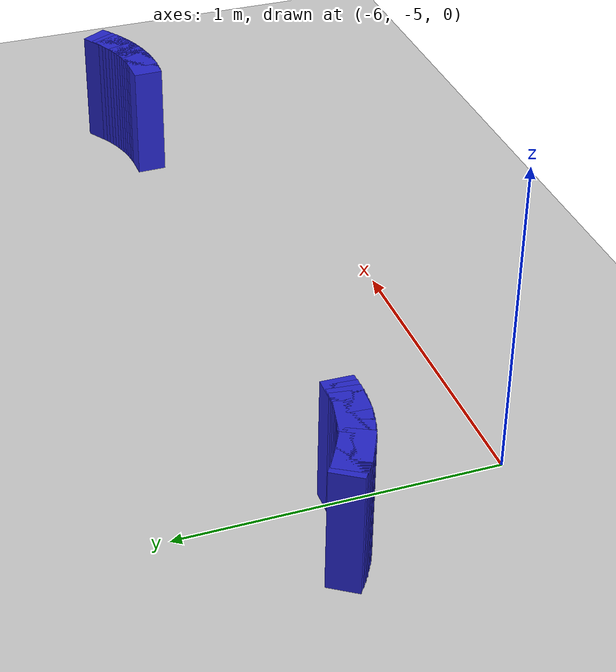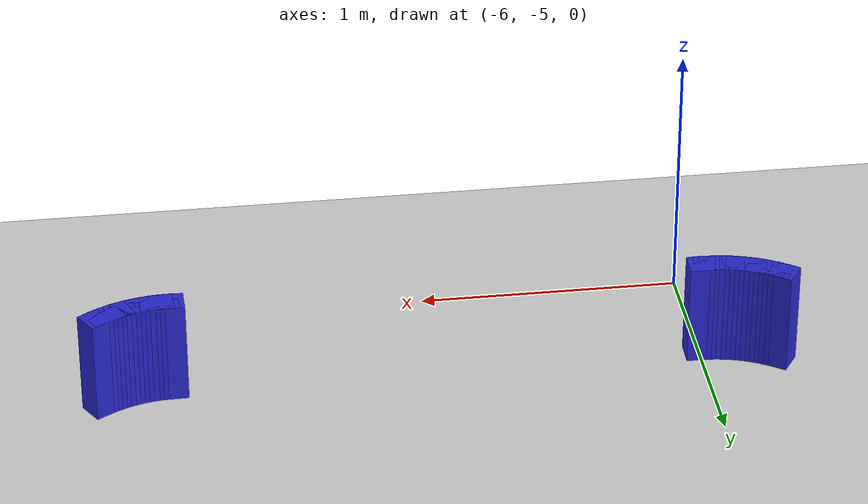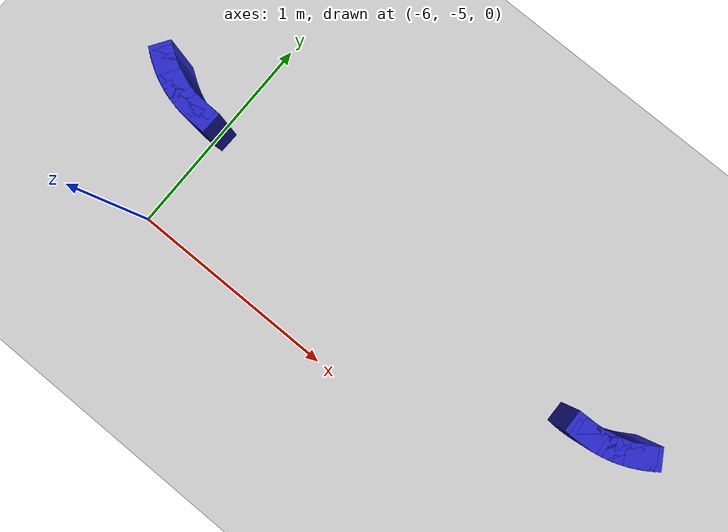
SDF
<sdf version="1.6">
 <world name="new_race_track">
  <include><uri>model://ground_plane</uri></include>
  <include><uri>model://sun</uri></include>
  <model name="race_track">
   <static>true</static>
   <link name="wall_link_25">
    <collision name="c"><geometry><box><size>0.1305 0.1 0.4</size></box></geometry></collision>
    <visual name="v">
     <geometry><box><size>0.1305 0.1 0.4</size></box></geometry>
     <material><ambient>0.15 0.15 0.8 1</ambient><diffuse>0.15 0.15 0.8 1</diffuse></material>
    </visual>
    <pose>-6.2755 -4.4168 0.200 0 0 -0.5840</pose>
   </link>
   <link name="wall_link_26">
    <collision name="c"><geometry><box><size>0.1305 0.1 0.4</size></box></geometry></collision>
    <visual name="v">
     <geometry><box><size>0.1305 0.1 0.4</size></box></geometry>
     <material><ambient>0.15 0.15 0.8 1</ambient><diffuse>0.15 0.15 0.8 1</diffuse></material>
    </visual>
    <pose>-6.2585 -4.4275 0.200 0 0 -0.5437</pose>
   </link>
   <link name="wall_link_27">
    <collision name="c"><geometry><box><size>0.1305 0.1 0.4</size></box></geometry></collision>
    <visual name="v">
     <geometry><box><size>0.1305 0.1 0.4</size></box></geometry>
     <material><ambient>0.15 0.15 0.8 1</ambient><diffuse>0.15 0.15 0.8 1</diffuse></material>
    </visual>
    <pose>-6.2410 -4.4376 0.200 0 0 -0.5035</pose>
   </link>
   <link name="wall_link_28">
    <collision name="c"><geometry><box><size>0.1305 0.1 0.4</size></box></geometry></collision>
    <visual name="v">
     <geometry><box><size>0.1305 0.1 0.4</size></box></geometry>
     <material><ambient>0.15 0.15 0.8 1</ambient><diffuse>0.15 0.15 0.8 1</diffuse></material>
    </visual>
    <pose>-6.2232 -4.4470 0.200 0 0 -0.4632</pose>
   </link>
   <link name="wall_link_29">
    <collision name="c"><geometry><box><size>0.1305 0.1 0.4</size></box></geometry></collision>
    <visual name="v">
     <geometry><box><size>0.1305 0.1 0.4</size></box></geometry>
     <material><ambient>0.15 0.15 0.8 1</ambient><diffuse>0.15 0.15 0.8 1</diffuse></material>
    </visual>
    <pose>-6.2050 -4.4556 0.200 0 0 -0.4229</pose>
   </link>
   <link name="wall_link_30">
    <collision name="c"><geometry><box><size>0.1305 0.1 0.4</size></box></geometry></collision>
    <visual name="v">
     <geometry><box><size>0.1305 0.1 0.4</size></box></geometry>
     <material><ambient>0.15 0.15 0.8 1</ambient><diffuse>0.15 0.15 0.8 1</diffuse></material>
    </visual>
    <pose>-6.1865 -4.4635 0.200 0 0 -0.3826</pose>
   </link>
   <link name="wall_link_31">
    <collision name="c"><geometry><box><size>0.1305 0.1 0.4</size></box></geometry></collision>
    <visual name="v">
     <geometry><box><size>0.1305 0.1 0.4</size></box></geometry>
     <material><ambient>0.15 0.15 0.8 1</ambient><diffuse>0.15 0.15 0.8 1</diffuse></material>
    </visual>
    <pose>-6.1677 -4.4706 0.200 0 0 -0.3424</pose>
   </link>
   <link name="wall_link_32">
    <collision name="c"><geometry><box><size>0.1305 0.1 0.4</size></box></geometry></collision>
    <visual name="v">
     <geometry><box><size>0.1305 0.1 0.4</size></box></geometry>
     <material><ambient>0.15 0.15 0.8 1</ambient><diffuse>0.15 0.15 0.8 1</diffuse></material>
    </visual>
    <pose>-6.1486 -4.4770 0.200 0 0 -0.3021</pose>
   </link>
   <link name="wall_link_33">
    <collision name="c"><geometry><box><size>0.1305 0.1 0.4</size></box></geometry></collision>
    <visual name="v">
     <geometry><box><size>0.1305 0.1 0.4</size></box></geometry>
     <material><ambient>0.15 0.15 0.8 1</ambient><diffuse>0.15 0.15 0.8 1</diffuse></material>
    </visual>
    <pose>-6.1293 -4.4826 0.200 0 0 -0.2618</pose>
   </link>
   <link name="wall_link_34">
    <collision name="c"><geometry><box><size>0.1305 0.1 0.4</size></box></geometry></collision>
    <visual name="v">
     <geometry><box><size>0.1305 0.1 0.4</size></box></geometry>
     <material><ambient>0.15 0.15 0.8 1</ambient><diffuse>0.15 0.15 0.8 1</diffuse></material>
    </visual>
    <pose>-6.1098 -4.4874 0.200 0 0 -0.2215</pose>
   </link>
   <link name="wall_link_35">
    <collision name="c"><geometry><box><size>0.1305 0.1 0.4</size></box></geometry></collision>
    <visual name="v">
     <geometry><box><size>0.1305 0.1 0.4</size></box></geometry>
     <material><ambient>0.15 0.15 0.8 1</ambient><diffuse>0.15 0.15 0.8 1</diffuse></material>
    </visual>
    <pose>-6.0901 -4.4914 0.200 0 0 -0.1812</pose>
   </link>
   <link name="wall_link_36">
    <collision name="c"><geometry><box><size>0.1305 0.1 0.4</size></box></geometry></collision>
    <visual name="v">
     <geometry><box><size>0.1305 0.1 0.4</size></box></geometry>
     <material><ambient>0.15 0.15 0.8 1</ambient><diffuse>0.15 0.15 0.8 1</diffuse></material>
    </visual>
    <pose>-6.0702 -4.4946 0.200 0 0 -0.1410</pose>
   </link>
   <link name="wall_link_37">
    <collision name="c"><geometry><box><size>0.1305 0.1 0.4</size></box></geometry></collision>
    <visual name="v">
     <geometry><box><size>0.1305 0.1 0.4</size></box></geometry>
     <material><ambient>0.15 0.15 0.8 1</ambient><diffuse>0.15 0.15 0.8 1</diffuse></material>
    </visual>
    <pose>-6.0502 -4.4971 0.200 0 0 -0.1007</pose>
   </link>
   <link name="wall_link_38">
    <collision name="c"><geometry><box><size>0.1305 0.1 0.4</size></box></geometry></collision>
    <visual name="v">
     <geometry><box><size>0.1305 0.1 0.4</size></box></geometry>
     <material><ambient>0.15 0.15 0.8 1</ambient><diffuse>0.15 0.15 0.8 1</diffuse></material>
    </visual>
    <pose>-6.0302 -4.4987 0.200 0 0 -0.0604</pose>
   </link>
   <link name="wall_link_39">
    <collision name="c"><geometry><box><size>0.1305 0.1 0.4</size></box></geometry></collision>
    <visual name="v">
     <geometry><box><size>0.1305 0.1 0.4</size></box></geometry>
     <material><ambient>0.15 0.15 0.8 1</ambient><diffuse>0.15 0.15 0.8 1</diffuse></material>
    </visual>
    <pose>-6.0101 -4.4995 0.200 0 0 -0.0201</pose>
   </link>
   <link name="wall_link_41">
    <collision name="c"><geometry><box><size>0.1305 0.1 0.4</size></box></geometry></collision>
    <visual name="v">
     <geometry><box><size>0.1305 0.1 0.4</size></box></geometry>
     <material><ambient>0.15 0.15 0.8 1</ambient><diffuse>0.15 0.15 0.8 1</diffuse></material>
    </visual>
    <pose>-3.9899 -4.4995 0.200 0 0 0.0201</pose>
   </link>
   <link name="wall_link_42">
    <collision name="c"><geometry><box><size>0.1305 0.1 0.4</size></box></geometry></collision>
    <visual name="v">
     <geometry><box><size>0.1305 0.1 0.4</size></box></geometry>
     <material><ambient>0.15 0.15 0.8 1</ambient><diffuse>0.15 0.15 0.8 1</diffuse></material>
    </visual>
    <pose>-3.9698 -4.4987 0.200 0 0 0.0604</pose>
   </link>
   <link name="wall_link_43">
    <collision name="c"><geometry><box><size>0.1305 0.1 0.4</size></box></geometry></collision>
    <visual name="v">
     <geometry><box><size>0.1305 0.1 0.4</size></box></geometry>
     <material><ambient>0.15 0.15 0.8 1</ambient><diffuse>0.15 0.15 0.8 1</diffuse></material>
    </visual>
    <pose>-3.9498 -4.4971 0.200 0 0 0.1007</pose>
   </link>
   <link name="wall_link_44">
    <collision name="c"><geometry><box><size>0.1305 0.1 0.4</size></box></geometry></collision>
    <visual name="v">
     <geometry><box><size>0.1305 0.1 0.4</size></box></geometry>
     <material><ambient>0.15 0.15 0.8 1</ambient><diffuse>0.15 0.15 0.8 1</diffuse></material>
    </visual>
    <pose>-3.9298 -4.4946 0.200 0 0 0.1410</pose>
   </link>
   <link name="wall_link_45">
    <collision name="c"><geometry><box><size>0.1305 0.1 0.4</size></box></geometry></collision>
    <visual name="v">
     <geometry><box><size>0.1305 0.1 0.4</size></box></geometry>
     <material><ambient>0.15 0.15 0.8 1</ambient><diffuse>0.15 0.15 0.8 1</diffuse></material>
    </visual>
    <pose>-3.9099 -4.4914 0.200 0 0 0.1812</pose>
   </link>
   <link name="wall_link_46">
    <collision name="c"><geometry><box><size>0.1305 0.1 0.4</size></box></geometry></collision>
    <visual name="v">
     <geometry><box><size>0.1305 0.1 0.4</size></box></geometry>
     <material><ambient>0.15 0.15 0.8 1</ambient><diffuse>0.15 0.15 0.8 1</diffuse></material>
    </visual>
    <pose>-3.8902 -4.4874 0.200 0 0 0.2215</pose>
   </link>
   <link name="wall_link_47">
    <collision name="c"><geometry><box><size>0.1305 0.1 0.4</size></box></geometry></collision>
    <visual name="v">
     <geometry><box><size>0.1305 0.1 0.4</size></box></geometry>
     <material><ambient>0.15 0.15 0.8 1</ambient><diffuse>0.15 0.15 0.8 1</diffuse></material>
    </visual>
    <pose>-3.8707 -4.4826 0.200 0 0 0.2618</pose>
   </link>
   <link name="wall_link_48">
    <collision name="c"><geometry><box><size>0.1305 0.1 0.4</size></box></geometry></collision>
    <visual name="v">
     <geometry><box><size>0.1305 0.1 0.4</size></box></geometry>
     <material><ambient>0.15 0.15 0.8 1</ambient><diffuse>0.15 0.15 0.8 1</diffuse></material>
    </visual>
    <pose>-3.8514 -4.4770 0.200 0 0 0.3021</pose>
   </link>
   <link name="wall_link_49">
    <collision name="c"><geometry><box><size>0.1305 0.1 0.4</size></box></geometry></collision>
    <visual name="v">
     <geometry><box><size>0.1305 0.1 0.4</size></box></geometry>
     <material><ambient>0.15 0.15 0.8 1</ambient><diffuse>0.15 0.15 0.8 1</diffuse></material>
    </visual>
    <pose>-3.8323 -4.4706 0.200 0 0 0.3424</pose>
   </link>
   <link name="wall_link_50">
    <collision name="c"><geometry><box><size>0.1305 0.1 0.4</size></box></geometry></collision>
    <visual name="v">
     <geometry><box><size>0.1305 0.1 0.4</size></box></geometry>
     <material><ambient>0.15 0.15 0.8 1</ambient><diffuse>0.15 0.15 0.8 1</diffuse></material>
    </visual>
    <pose>-3.8135 -4.4635 0.200 0 0 0.3826</pose>
   </link>
   <link name="wall_link_51">
    <collision name="c"><geometry><box><size>0.1305 0.1 0.4</size></box></geometry></collision>
    <visual name="v">
     <geometry><box><size>0.1305 0.1 0.4</size></box></geometry>
     <material><ambient>0.15 0.15 0.8 1</ambient><diffuse>0.15 0.15 0.8 1</diffuse></material>
    </visual>
    <pose>-3.7950 -4.4556 0.200 0 0 0.4229</pose>
   </link>
   <link name="wall_link_52">
    <collision name="c"><geometry><box><size>0.1305 0.1 0.4</size></box></geometry></collision>
    <visual name="v">
     <geometry><box><size>0.1305 0.1 0.4</size></box></geometry>
     <material><ambient>0.15 0.15 0.8 1</ambient><diffuse>0.15 0.15 0.8 1</diffuse></material>
    </visual>
    <pose>-3.7768 -4.4470 0.200 0 0 0.4632</pose>
   </link>
   <link name="wall_link_53">
    <collision name="c"><geometry><box><size>0.1305 0.1 0.4</size></box></geometry></collision>
    <visual name="v">
     <geometry><box><size>0.1305 0.1 0.4</size></box></geometry>
     <material><ambient>0.15 0.15 0.8 1</ambient><diffuse>0.15 0.15 0.8 1</diffuse></material>
    </visual>
    <pose>-3.7590 -4.4376 0.200 0 0 0.5035</pose>
   </link>
   <link name="wall_link_54">
    <collision name="c"><geometry><box><size>0.1305 0.1 0.4</size></box></geometry></collision>
    <visual name="v">
     <geometry><box><size>0.1305 0.1 0.4</size></box></geometry>
     <material><ambient>0.15 0.15 0.8 1</ambient><diffuse>0.15 0.15 0.8 1</diffuse></material>
    </visual>
    <pose>-3.7415 -4.4275 0.200 0 0 0.5437</pose>
   </link>
  </model>
 </world>
</sdf>
